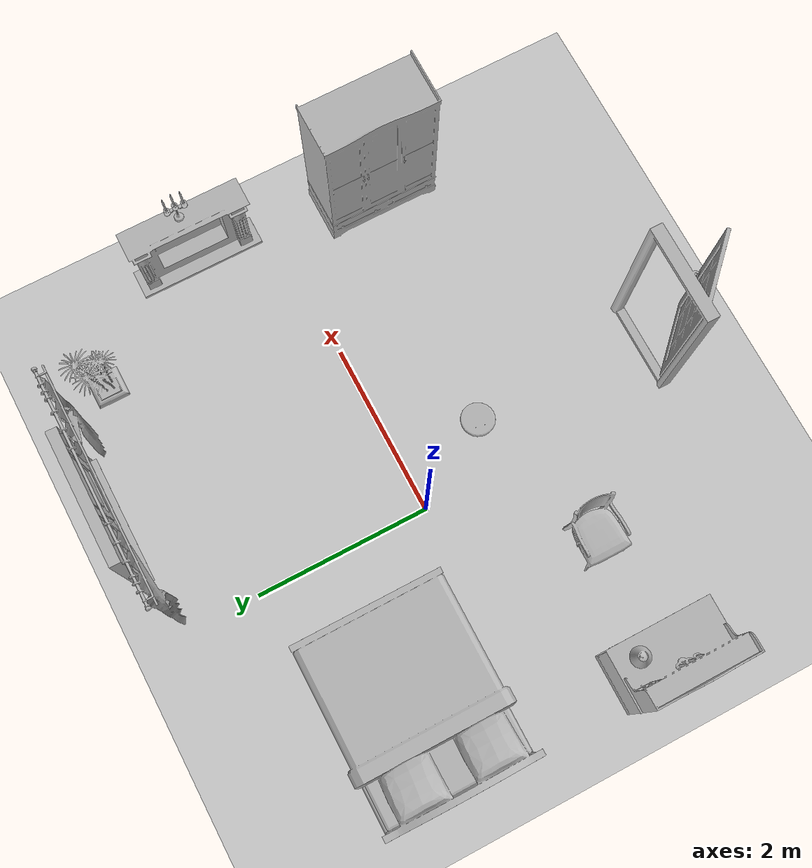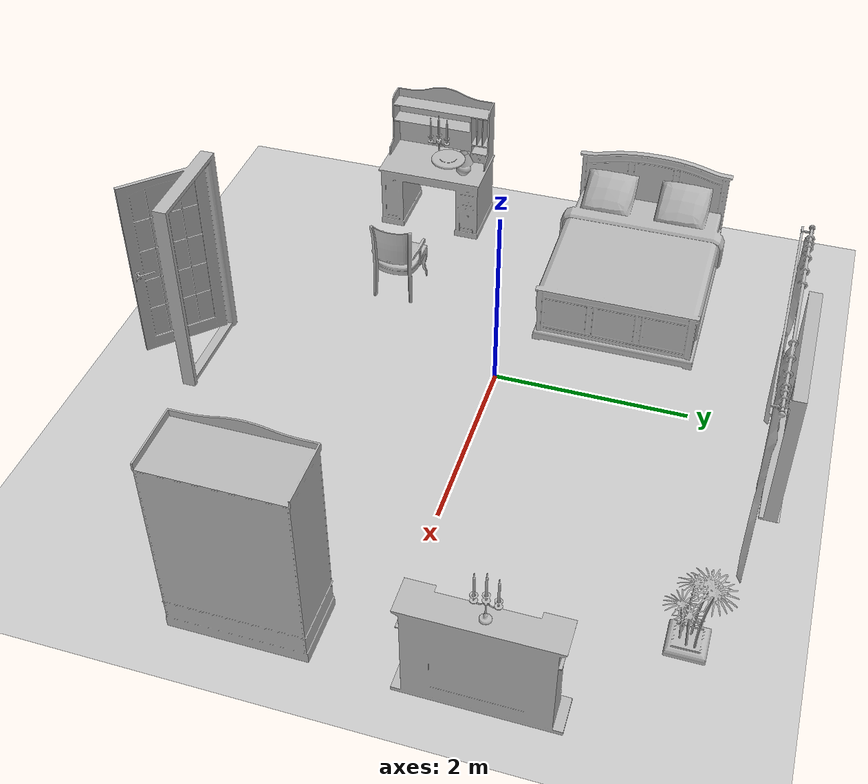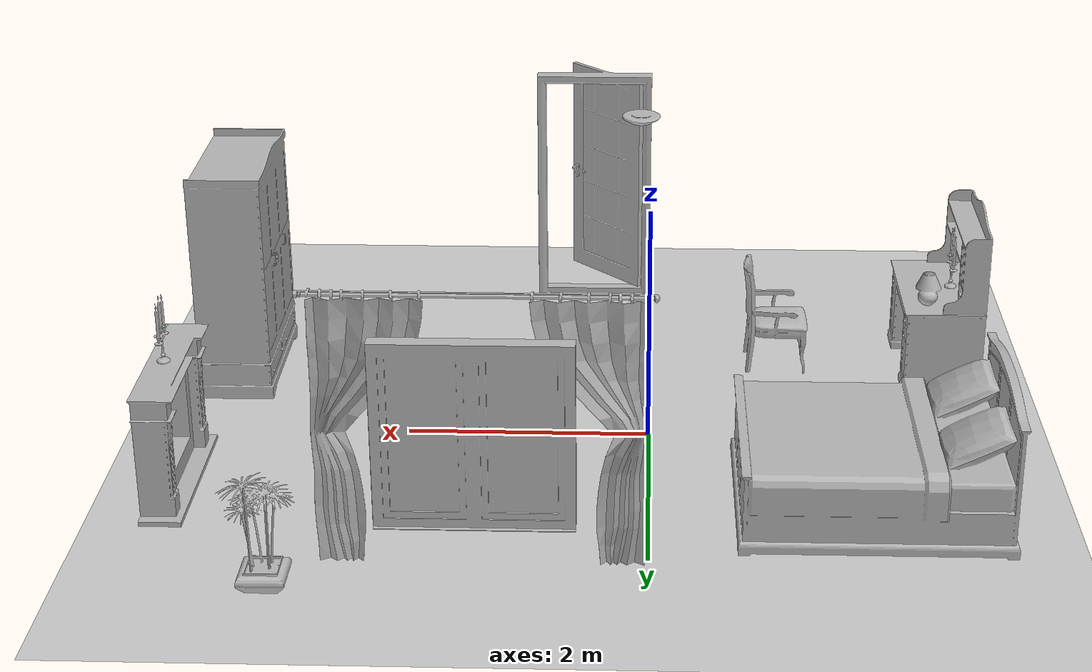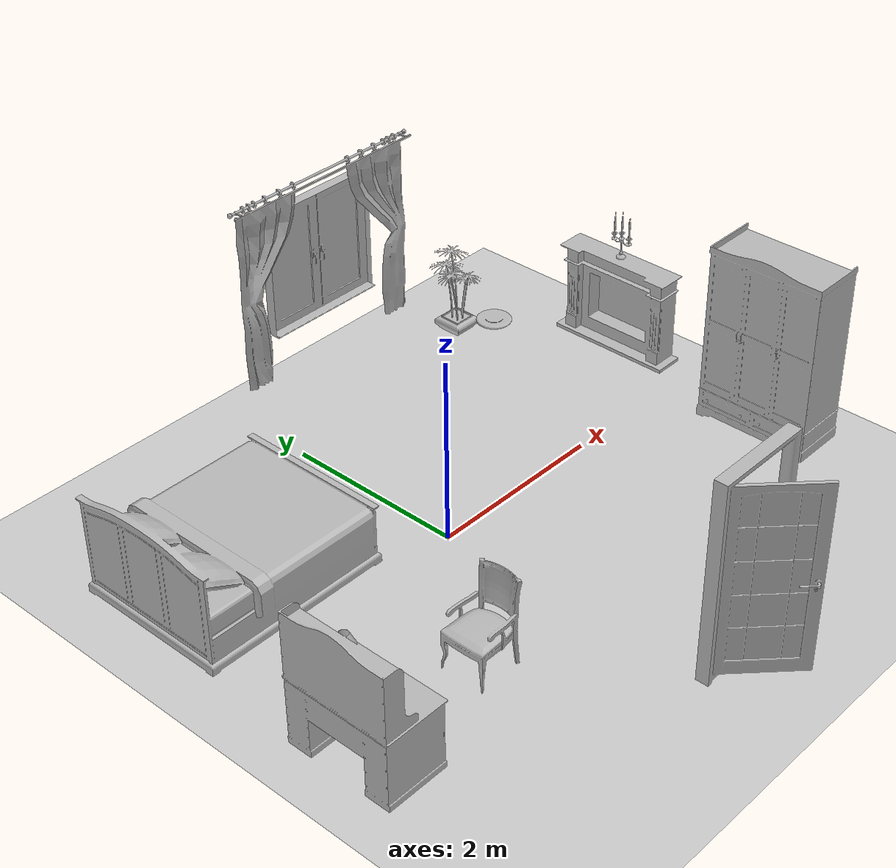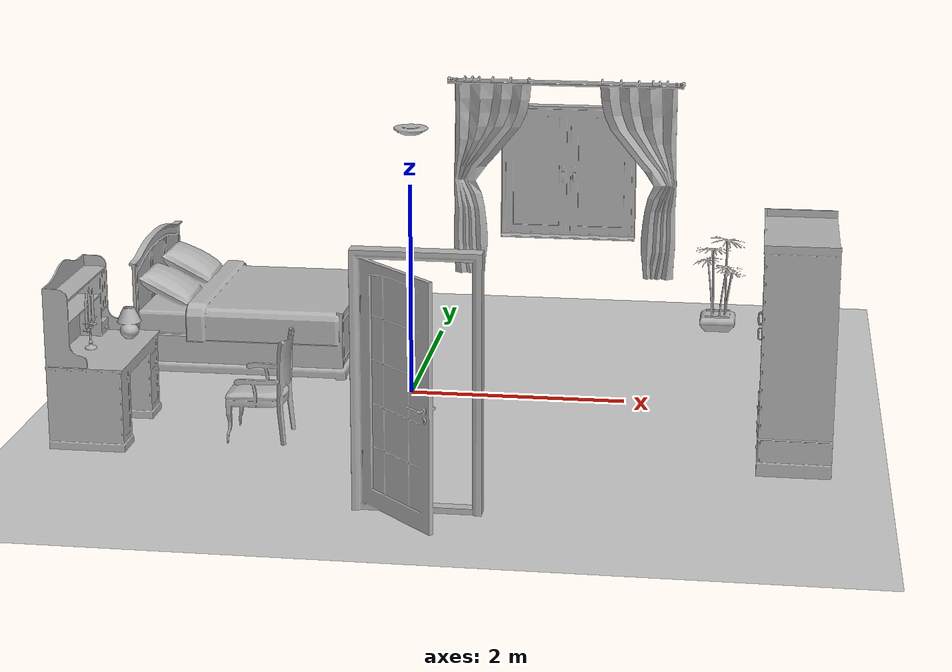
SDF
<sdf version="1.4">
 <world name="default">
  <light name="sun" type="directional">
   <pose>0 0 10 0 -0 0</pose>
   <diffuse>0.8 0.8 0.8 1</diffuse>
   <specular>0.2 0.2 0.2 1</specular>
   <attenuation>
    <range>1000</range>
    <constant>0.9</constant>
    <linear>0.01</linear>
    <quadratic>0.001</quadratic>
   </attenuation>
   <direction>-0.5 0.1 -0.9</direction>
  </light>
  <model name="ground_plane">
   <static>1</static>
   <link name="link">
    <collision name="collision">
     <geometry><plane><normal>0 0 1</normal><size>100 100</size></plane></geometry>
     <surface><friction><ode><mu>100</mu><mu2>50</mu2></ode></friction></surface>
    </collision>
    <visual name="visual">
     <cast_shadows>0</cast_shadows>
     <geometry><plane><normal>0 0 1</normal><size>100 100</size></plane></geometry>
     <material>
      <script><uri>file://media/materials/scripts/gazebo.material</uri><name>Gazebo/Grey</name></script>
     </material>
    </visual>
    <velocity_decay><linear>0</linear><angular>0</angular></velocity_decay>
   </link>
  </model>
  <physics type="ode">
   <max_step_size>0.001</max_step_size>
   <real_time_factor>1</real_time_factor>
   <real_time_update_rate>1000</real_time_update_rate>
   <gravity>0 0 -9.8</gravity>
  </physics>
  <scene><ambient>0.4 0.4 0.4 1</ambient><background>0.7 0.7 0.7 1</background><shadows>1</shadows></scene>
  <spherical_coordinates>
   <surface_model>EARTH_WGS84</surface_model>
   <latitude_deg>0</latitude_deg>
   <longitude_deg>0</longitude_deg>
   <elevation>0</elevation>
   <heading_deg>0</heading_deg>
  </spherical_coordinates>
  <model name="762_0">
   <pose>0.530538 -2.97704 0 0 -0 1.5708</pose>
   <static>1</static>
   <link name="link">
    <collision name="collision"><geometry><box><size>0.729998 1.06 2</size></box></geometry></collision>
    <visual name="visual"><geometry><mesh><uri>model://762/762.dae</uri></mesh></geometry></visual>
    <velocity_decay><linear>0</linear><angular>0</angular></velocity_decay>
   </link>
  </model>
  <model name="s__418_0">
   <pose>-1.72678 1.07854 0.01 0 -0 0</pose>
   <static>1</static>
   <link name="link">
    <collision name="collision"><geometry><box><size>2.10004 1.81 2</size></box></geometry></collision>
    <visual name="visual"><geometry><mesh><uri>model://s__418/s__418.dae</uri></mesh></geometry></visual>
    <velocity_decay><linear>0</linear><angular>0</angular></velocity_decay>
   </link>
  </model>
  <model name="s__593_0">
   <pose>-2.53037 -1.41727 0.01 0 -0 0</pose>
   <static>1</static>
   <link name="link">
    <collision name="collision"><geometry><box><size>0.69002 1.2 2</size></box></geometry></collision>
    <visual name="visual"><geometry><mesh><uri>model://s__593/s__593.dae</uri></mesh></geometry></visual>
    <velocity_decay><linear>0</linear><angular>0</angular></velocity_decay>
   </link>
  </model>
  <model name="352_0">
   <pose>-1.03947 -1.41779 0.01 0 -0 3.14159</pose>
   <static>1</static>
   <link name="link">
    <collision name="collision"><geometry><box><size>0.572605 0.509146 2</size></box></geometry></collision>
    <visual name="visual"><geometry><mesh><uri>model://352/352.dae</uri></mesh></geometry></visual>
    <velocity_decay><linear>0</linear><angular>0</angular></velocity_decay>
   </link>
  </model>
  <model name="519_0">
   <pose>3.74153 0.916794 0.01 0 -0 3.14159</pose>
   <static>1</static>
   <link name="link">
    <collision name="collision"><geometry><box><size>0.34 1.45 2</size></box></geometry></collision>
    <visual name="visual"><geometry><mesh><uri>model://519/519.dae</uri></mesh></geometry></visual>
    <velocity_decay><linear>0</linear><angular>0</angular></velocity_decay>
   </link>
  </model>
  <model name="531_0">
   <pose>-2.64265 -1.43239 0.76 0 -0 0</pose>
   <static>1</static>
   <link name="link">
    <collision name="collision"><geometry><box><size>0.105612 0.26 2</size></box></geometry></collision>
    <visual name="visual"><geometry><mesh><uri>model://531/531.dae</uri></mesh></geometry></visual>
    <velocity_decay><linear>0</linear><angular>0</angular></velocity_decay>
   </link>
  </model>
  <model name="531_1">
   <pose>3.77485 0.940799 1.08081 0 -0 0</pose>
   <static>1</static>
   <link name="link">
    <collision name="collision"><geometry><box><size>0.105612 0.26 2</size></box></geometry></collision>
    <visual name="visual"><geometry><mesh><uri>model://531/531.dae</uri></mesh></geometry></visual>
    <velocity_decay><linear>0</linear><angular>0</angular></velocity_decay>
   </link>
  </model>
  <model name="209_0">
   <pose>1.19853 2.91237 0.81 0 0 -1.5708</pose>
   <static>1</static>
   <link name="link">
    <collision name="collision"><geometry><box><size>0.175 1.4 2</size></box></geometry></collision>
    <visual name="visual"><geometry><mesh><uri>model://209/209.dae</uri></mesh></geometry></visual>
    <velocity_decay><linear>0</linear><angular>0</angular></velocity_decay>
   </link>
  </model>
  <model name="275_0">
   <pose>1.16854 2.75154 0.42 0 -0 1.5708</pose>
   <static>1</static>
   <link name="link">
    <collision name="collision"><geometry><box><size>0.12888 2.44974 2</size></box></geometry></collision>
    <visual name="visual"><geometry><mesh><uri>model://275/275.dae</uri></mesh></geometry></visual>
    <velocity_decay><linear>0</linear><angular>0</angular></velocity_decay>
   </link>
  </model>
  <model name="421_0">
   <pose>-2.39624 -1.06072 0.76 0 -0 0</pose>
   <static>1</static>
   <link name="link">
    <collision name="collision"><geometry><box><size>0.219854 0.219854 2</size></box></geometry></collision>
    <visual name="visual"><geometry><mesh><uri>model://421/421.dae</uri></mesh></geometry></visual>
    <velocity_decay><linear>0</linear><angular>0</angular></velocity_decay>
   </link>
  </model>
  <model name="624_0">
   <pose>2.80049 2.48281 0.01 0 -0 0</pose>
   <static>1</static>
   <link name="link">
    <collision name="collision"><geometry><box><size>0.539563 0.590072 2</size></box></geometry></collision>
    <visual name="visual"><geometry><mesh><uri>model://624/624.dae</uri></mesh></geometry></visual>
    <velocity_decay><linear>0</linear><angular>0</angular></velocity_decay>
   </link>
  </model>
  <model name="s__590_0">
   <pose>3.53517 -1.1952 0.01 0 -0 3.14159</pose>
   <static>1</static>
   <link name="link">
    <collision name="collision"><geometry><box><size>0.659606 1.30005 2</size></box></geometry></collision>
    <visual name="visual"><geometry><mesh><uri>model://s__590/s__590.dae</uri></mesh></geometry></visual>
    <velocity_decay><linear>0</linear><angular>0</angular></velocity_decay>
   </link>
  </model>
  <model name="s__487_0">
   <pose>0.088533 -0.487199 2.57 0 -0 0</pose>
   <static>1</static>
   <link name="link">
    <collision name="collision"><geometry><box><size>0.31 0.31 0</size></box></geometry></collision>
    <visual name="visual"><geometry><mesh><uri>model://s__487/s__487.dae</uri></mesh></geometry></visual>
    <velocity_decay><linear>0</linear><angular>0</angular></velocity_decay>
   </link>
  </model>
 </world>
</sdf>
